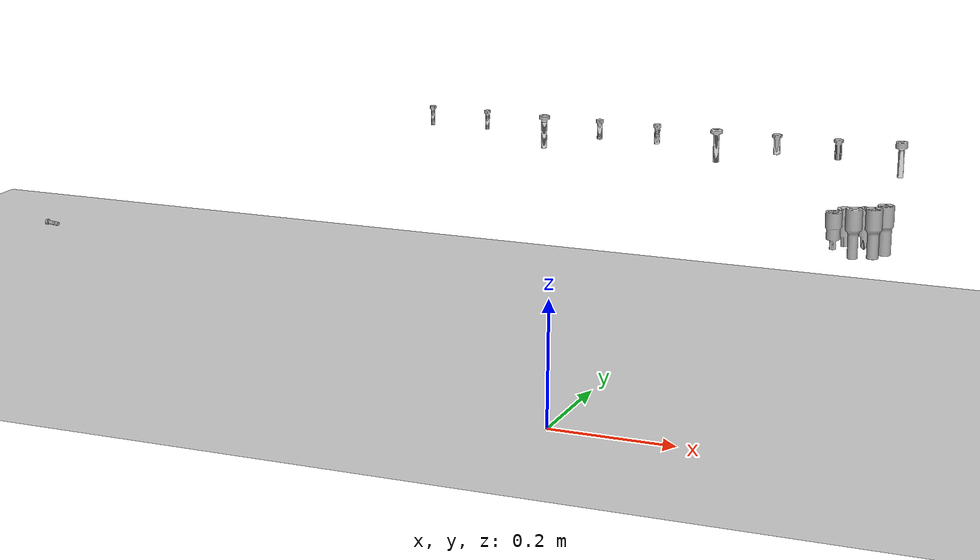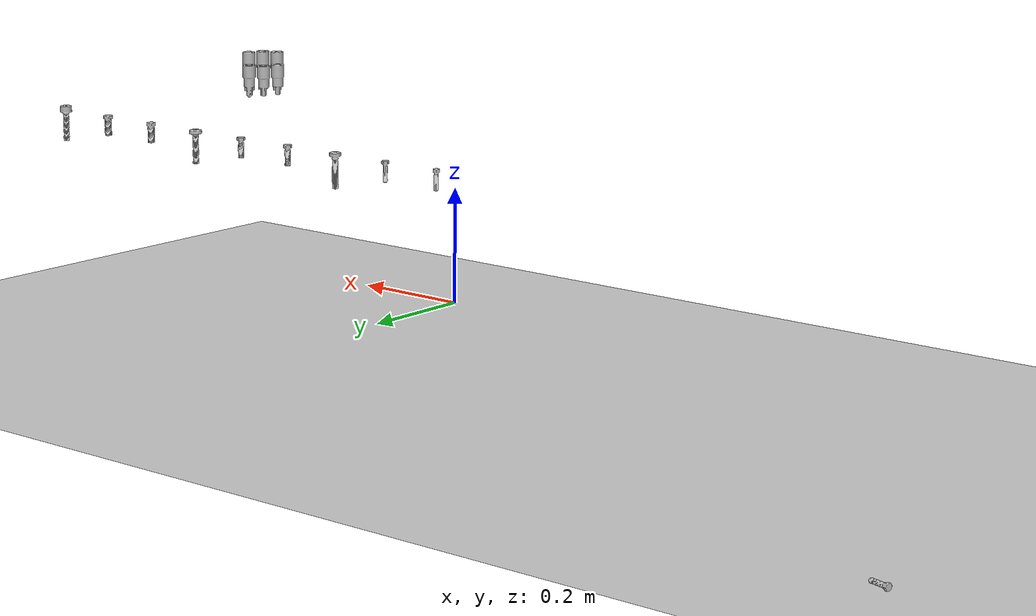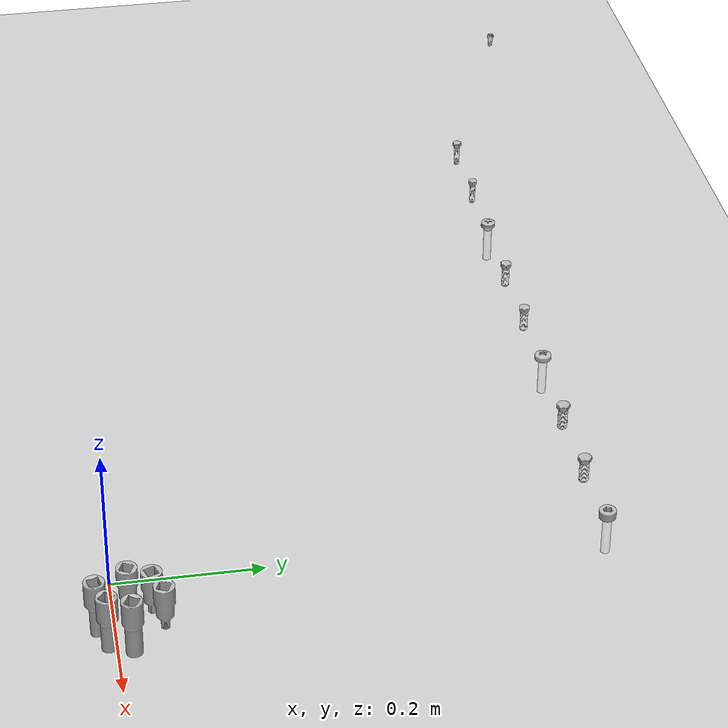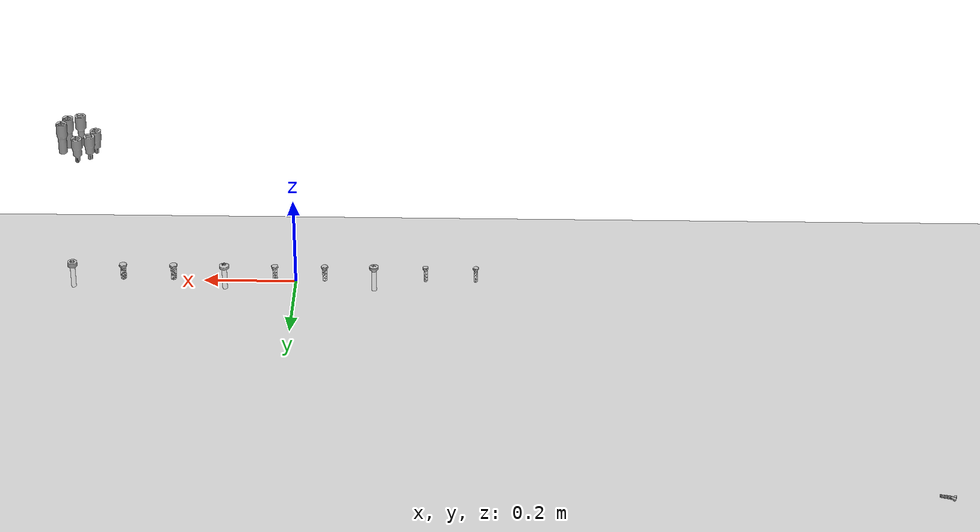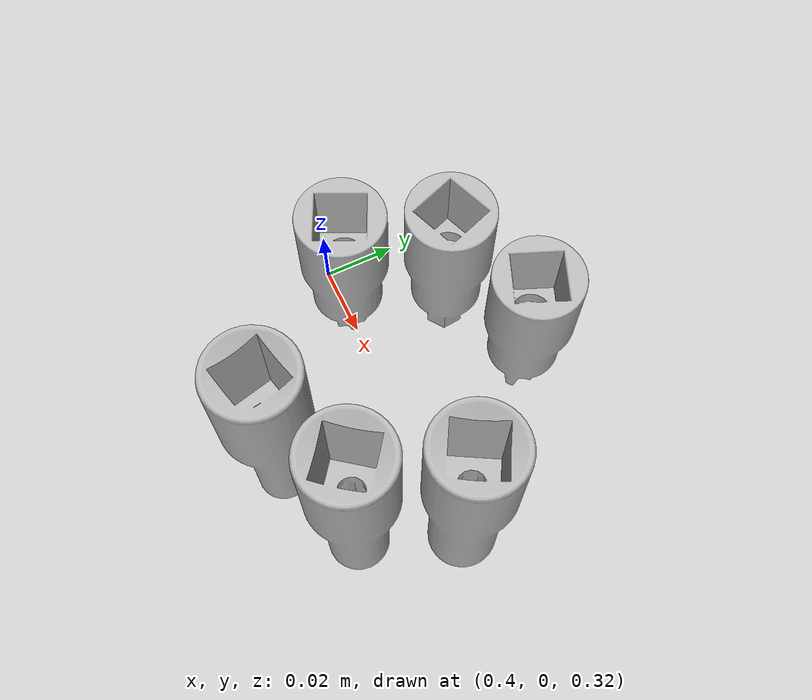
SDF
<sdf version="1.6">
 <world name="default">
  <plugin name="ros_link_attacher_plugin" filename="libgazebo_ros_link_attacher.so"/>
  <light name="sun" type="directional">
   <pose>0 0 10 0 -0 0</pose>
   <diffuse>0.8 0.8 0.8 1</diffuse>
   <specular>0.2 0.2 0.2 1</specular>
   <attenuation>
    <range>1000</range>
    <constant>0.9</constant>
    <linear>0.01</linear>
    <quadratic>0.001</quadratic>
   </attenuation>
   <direction>-0.5 0.1 -0.9</direction>
  </light>
  <model name="ground_plane">
   <static>1</static>
   <link name="link">
    <collision name="collision">
     <geometry><plane><normal>0 0 1</normal><size>100 100</size></plane></geometry>
     <surface>
      <contact><collide_bitmask>65535</collide_bitmask></contact>
      <friction><ode><mu>100</mu><mu2>50</mu2></ode></friction>
     </surface>
    </collision>
    <visual name="visual">
     <cast_shadows>0</cast_shadows>
     <geometry><plane><normal>0 0 1</normal><size>100 100</size></plane></geometry>
     <material>
      <script><uri>file://media/materials/scripts/gazebo.material</uri><name>Gazebo/Grey</name></script>
     </material>
    </visual>
   </link>
  </model>
  <physics name="default_physics" default="0" type="ode">
   <max_step_size>0.001</max_step_size>
   <real_time_factor>1</real_time_factor>
   <real_time_update_rate>1000</real_time_update_rate>
  </physics>
  <gravity>0 0 -9.8</gravity>
  <magnetic_field>6e-06 2.3e-05 -4.2e-05</magnetic_field>
  <atmosphere type="adiabatic"/>
  <scene><ambient>0.4 0.4 0.4 1</ambient><background>0.7 0.7 0.7 1</background><shadows>1</shadows></scene>
  <audio><device>default</device></audio>
  <spherical_coordinates>
   <surface_model>EARTH_WGS84</surface_model>
   <latitude_deg>0</latitude_deg>
   <longitude_deg>0</longitude_deg>
   <elevation>0</elevation>
   <heading_deg>0</heading_deg>
  </spherical_coordinates>
  <model name="hexagon_bolt_sleeve">
   <link name="hexagon_bolt_sleeve_base_link">
    <inertial>
     <mass>0.011735</mass>
     <inertia>
      <ixx>7.5362e-07</ixx>
      <ixy>3.6954e-13</ixy>
      <ixz>1.3504e-13</ixz>
      <iyy>1.4944e-06</iyy>
      <iyz>-1.8927e-13</iyz>
      <izz>1.4944e-06</izz>
     </inertia>
    </inertial>
    <collision name="hexagon_bolt_sleeve_base_link_collision">
     <pose>0.0043 0 0 3.14159 1.57079 3.14159</pose>
     <geometry><cylinder><length>0.054</length><radius>0.011</radius></cylinder></geometry>
    </collision>
    <visual name="hexagon_bolt_sleeve_base_link_visual">
     <geometry>
      <mesh>
       <scale>1 1 1</scale>
       <uri>/home/ur/Desktop/ur10e_sim/src/model/hexagon_sleeve/meshes/hexagon_sleeve_base_link.dae</uri>
      </mesh>
     </geometry>
    </visual>
   </link>
   <pose>0.424263 0.025609 0.3483 0.039683 1.57075 -2.75889</pose>
  </model>
  <model name="star_bolt_sleeve">
   <link name="star_bolt_sleeve_base_link">
    <inertial>
     <mass>0.011338</mass>
     <inertia>
      <ixx>7.4612e-07</ixx>
      <ixy>-3.6954e-13</ixy>
      <ixz>-1.3504e-13</ixz>
      <iyy>1.4267e-06</iyy>
      <iyz>-1.8927e-13</iyz>
      <izz>1.4267e-06</izz>
     </inertia>
    </inertial>
    <collision name="star_bolt_sleeve_base_link_collision">
     <pose>0.005 0 0 3.14159 1.57079 3.14159</pose>
     <geometry><cylinder><length>0.054</length><radius>0.0108</radius></cylinder></geometry>
    </collision>
    <visual name="star_bolt_sleeve_base_link_visual">
     <geometry>
      <mesh>
       <scale>1 1 1</scale>
       <uri>/home/ur/Desktop/ur10e_sim/src/model/star_sleeve/meshes/star_sleeve_base_link.dae</uri>
      </mesh>
     </geometry>
    </visual>
   </link>
   <pose>0.413818 0.000631 0.349 1.22964 1.57078 -0.792783</pose>
  </model>
  <model name="M6_bolt_sleeve">
   <link name="M6_bolt_sleeve_base_link">
    <inertial>
     <pose>-0.00116 -0 0 0 -0 0</pose>
     <mass>0.010651</mass>
     <inertia>
      <ixx>8.1338e-07</ixx>
      <ixy>2.9592e-21</ixy>
      <ixz>-4.8249e-20</ixz>
      <iyy>3.3923e-06</iyy>
      <iyz>1.2184e-38</iyz>
      <izz>3.3923e-06</izz>
     </inertia>
    </inertial>
    <collision name="M6_bolt_sleeve_base_link_collision">
     <pose>0.009 0 0 3.14159 1.57079 3.14159</pose>
     <geometry><cylinder><length>0.07</length><radius>0.011</radius></cylinder></geometry>
    </collision>
    <visual name="M6_bolt_sleeve_base_link_visual">
     <geometry>
      <mesh>
       <scale>1 1 1</scale>
       <uri>/home/ur/Desktop/ur10e_sim/src/model/M6_sleeve/meshes/M6_sleeve_base_link.dae</uri>
      </mesh>
     </geometry>
    </visual>
   </link>
   <pose>0.449552 -0.035438 0.361001 -0.140534 1.57072 1.66182</pose>
  </model>
  <model name="cross_bolt_sleeve">
   <link name="cross_bolt_sleeve_base_link">
    <inertial>
     <mass>0.037112</mass>
     <inertia>
      <ixx>1.2806e-06</ixx>
      <ixy>3.6954e-13</ixy>
      <ixz>1.3504e-13</ixz>
      <iyy>3.7554e-06</iyy>
      <iyz>-1.8927e-13</iyz>
      <izz>3.7554e-06</izz>
     </inertia>
    </inertial>
    <collision name="cross_bolt_sleeve_base_link_collision">
     <pose>-0.0045 0 0 3.14159 1.57079 3.14159</pose>
     <geometry><cylinder><length>0.054</length><radius>0.011</radius></cylinder></geometry>
    </collision>
    <visual name="cross_bolt_sleeve_base_link_visual">
     <geometry>
      <mesh>
       <scale>1 1 1</scale>
       <uri>/home/ur/Desktop/ur10e_sim/src/model/cross_sleeve/meshes/cross_sleeve_base_link.dae</uri>
      </mesh>
     </geometry>
    </visual>
   </link>
   <pose>0.44955 0.036093 0.339499 -3.01897 1.57062 -0.271368</pose>
  </model>
  <model name="M8_bolt_sleeve">
   <link name="M8_bolt_sleeve_base_link">
    <inertial>
     <pose>-0.00074 0 -0 0 -0 0</pose>
     <mass>0.010747</mass>
     <inertia>
      <ixx>8.5579e-07</ixx>
      <ixy>-4.1281e-21</ixy>
      <ixz>6.8952e-20</ixz>
      <iyy>3.5699e-06</iyy>
      <iyz>0</iyz>
      <izz>3.5699e-06</izz>
     </inertia>
    </inertial>
    <collision name="M8_bolt_sleeve_base_link_collision">
     <pose>0.009 0 0 3.14159 1.57079 3.14159</pose>
     <geometry><cylinder><length>0.07</length><radius>0.011</radius></cylinder></geometry>
    </collision>
    <visual name="M8_bolt_sleeve_base_link_visual">
     <geometry>
      <mesh>
       <scale>1 1 1</scale>
       <uri>/home/ur/Desktop/ur10e_sim/src/model/M8_sleeve/meshes/M8_sleeve_base_link.dae</uri>
      </mesh>
     </geometry>
    </visual>
   </link>
   <pose>0.47483 -0.024987 0.361 0.328052 1.57079 -0.334734</pose>
  </model>
  <model name="M10_bolt_sleeve">
   <link name="M10_bolt_sleeve_base_link">
    <inertial>
     <pose>-0.000367 0 -0 0 -0 0</pose>
     <mass>0.010807</mass>
     <inertia>
      <ixx>9.0447e-07</ixx>
      <ixy>-5.476e-21</ixy>
      <ixz>9.2286e-20</ixz>
      <iyy>3.7372e-06</iyy>
      <iyz>2.1176e-22</iyz>
      <izz>3.7372e-06</izz>
     </inertia>
    </inertial>
    <collision name="M10_bolt_sleeve_base_link_collision">
     <pose>0.009 0 0 3.14159 1.57079 3.14159</pose>
     <geometry><cylinder><length>0.07</length><radius>0.011</radius></cylinder></geometry>
    </collision>
    <visual name="M10_bolt_sleeve_base_link_visual">
     <geometry>
      <mesh>
       <scale>1 1 1</scale>
       <uri>/home/ur/Desktop/ur10e_sim/src/model/M10_sleeve/meshes/M10_sleeve_base_link.dae</uri>
      </mesh>
     </geometry>
    </visual>
   </link>
   <pose>0.485229 0.000106 0.361 -2.3009 1.57077 -1.2535</pose>
  </model>
  <model name="M6_bolt_2">
   <link name="M6_bolt_base_link">
    <inertial>
     <mass>0.00132117</mass>
     <inertia>
      <ixx>1.3904e-07</ixx>
      <ixy>-1.11409e-12</ixy>
      <ixz>-1.24928e-12</ixz>
      <iyy>1.39038e-07</iyy>
      <iyz>-5.78343e-11</iyz>
      <izz>1.0587e-08</izz>
     </inertia>
    </inertial>
    <collision name="M6_bolt_base_link_collision">
     <pose>0 0 -0.011 0 -0 0</pose>
     <geometry><box><size>0.011 0.011 0.005</size></box></geometry>
    </collision>
    <visual name="M6_bolt_base_link_visual">
     <geometry>
      <mesh>
       <scale>1 1 1</scale>
       <uri>/home/ur/Desktop/ur10e_sim/src/model/M6_bolt/meshes/M6_bolt_base_link.dae</uri>
      </mesh>
     </geometry>
    </visual>
   </link>
   <pose>-0.304476 0.521937 0.347003 -3.14124 -0.000306 1.30728</pose>
  </model>
  <model name="M8_bolt_1">
   <link name="M8_bolt_base_link">
    <inertial>
     <mass>0.0021494</mass>
     <inertia>
      <ixx>2.2689e-07</ixx>
      <ixy>-3.7275e-12</ixy>
      <ixz>-5.9061e-13</ixz>
      <iyy>2.2689e-07</iyy>
      <iyz>-9.9229e-11</iyz>
      <izz>2.5923e-08</izz>
     </inertia>
    </inertial>
    <collision name="M8_bolt_base_link_collision">
     <pose>0 0 -0.0117 0 -0 0</pose>
     <geometry><box><size>0.013 0.013 0.005</size></box></geometry>
    </collision>
    <visual name="M8_bolt_base_link_visual">
     <geometry>
      <mesh>
       <scale>1 1 1</scale>
       <uri>/home/ur/Desktop/ur10e_sim/src/model/M8_bolt/meshes/M8_bolt_base_link.dae</uri>
      </mesh>
     </geometry>
    </visual>
   </link>
   <pose>-0.104238 0.521465 0.3463 -3.14156 -2.4e-05 1.39579</pose>
  </model>
  <model name="hexagon_bolt">
   <link name="hexagon_bolt_base_link">
    <inertial>
     <mass>0.0048557</mass>
     <inertia>
      <ixx>1.387e-07</ixx>
      <ixy>1.944e-12</ixy>
      <ixz>1.8554e-13</ixz>
      <iyy>6.111e-07</iyy>
      <iyz>-8.0444e-15</iyz>
      <izz>6.111e-07</izz>
     </inertia>
    </inertial>
    <collision name="hexagon_bolt_base_link_collision">
     <pose>-0.0128 0 0 0 -0 0</pose>
     <geometry><box><size>0.005 0.018 0.018</size></box></geometry>
    </collision>
    <visual name="hexagon_bolt_base_link_visual">
     <geometry>
      <mesh>
       <scale>1 1 1</scale>
       <uri>/home/ur/Desktop/ur10e_sim/src/model/hexagon_bolt/meshes/hexagon_bolt_base_link.dae</uri>
      </mesh>
     </geometry>
    </visual>
   </link>
   <pose>0.396721 0.521243 0.3442 -1.66379 1.57079 3.14159</pose>
  </model>
  <model name="M6_bolt_1">
   <link name="M6_bolt_base_link">
    <inertial>
     <mass>0.00132117</mass>
     <inertia>
      <ixx>1.3904e-07</ixx>
      <ixy>-1.11409e-12</ixy>
      <ixz>-1.24928e-12</ixz>
      <iyy>1.39038e-07</iyy>
      <iyz>-5.78343e-11</iyz>
      <izz>1.0587e-08</izz>
     </inertia>
    </inertial>
    <collision name="M6_bolt_base_link_collision">
     <pose>0 0 -0.011 0 -0 0</pose>
     <geometry><box><size>0.011 0.011 0.005</size></box></geometry>
    </collision>
    <visual name="M6_bolt_base_link_visual">
     <geometry>
      <mesh>
       <scale>1 1 1</scale>
       <uri>/home/ur/Desktop/ur10e_sim/src/model/M6_bolt/meshes/M6_bolt_base_link.dae</uri>
      </mesh>
     </geometry>
    </visual>
   </link>
   <pose>-0.403996 0.521618 0.347003 3.14105 -6.4e-05 2.82342</pose>
  </model>
  <model name="M10_bolt_2">
   <link name="M10_bolt_base_link">
    <inertial>
     <mass>0.00318401</mass>
     <inertia>
      <ixx>3.39637e-07</ixx>
      <ixy>-9.1621e-12</ixy>
      <ixz>1.11626e-12</ixz>
      <iyy>3.39635e-07</iyy>
      <iyz>-1.52086e-10</iyz>
      <izz>5.45645e-08</izz>
     </inertia>
    </inertial>
    <collision name="M10_bolt_base_link_collision">
     <pose>0 0 -0.0121 0 -0 0</pose>
     <geometry><box><size>0.015 0.015 0.005</size></box></geometry>
    </collision>
    <visual name="M10_bolt_base_link_visual">
     <geometry>
      <mesh>
       <scale>1 1 1</scale>
       <uri>/home/ur/Desktop/ur10e_sim/src/model/M10_bolt/meshes/M10_bolt_base_link.dae</uri>
      </mesh>
     </geometry>
    </visual>
   </link>
   <pose>0.296043 0.521482 0.3459 -3.14156 -5.5e-05 -0.140299</pose>
  </model>
  <model name="M10_bolt_1">
   <link name="M10_bolt_base_link">
    <inertial>
     <mass>0.00318401</mass>
     <inertia>
      <ixx>3.39637e-07</ixx>
      <ixy>-9.1621e-12</ixy>
      <ixz>1.11626e-12</ixz>
      <iyy>3.39635e-07</iyy>
      <iyz>-1.52086e-10</iyz>
      <izz>5.45645e-08</izz>
     </inertia>
    </inertial>
    <collision name="M10_bolt_base_link_collision">
     <pose>0 0 -0.0121 0 -0 0</pose>
     <geometry><box><size>0.015 0.015 0.005</size></box></geometry>
    </collision>
    <visual name="M10_bolt_base_link_visual">
     <geometry>
      <mesh>
       <scale>1 1 1</scale>
       <uri>/home/ur/Desktop/ur10e_sim/src/model/M10_bolt/meshes/M10_bolt_base_link.dae</uri>
      </mesh>
     </geometry>
    </visual>
   </link>
   <pose>0.195997 0.521413 0.3459 -3.14156 -6e-05 -0.152233</pose>
  </model>
  <model name="M6_bolt_obstacle">
   <link name="M6_bolt_base_link">
    <inertial>
     <mass>0.00132117</mass>
     <inertia>
      <ixx>1.3904e-07</ixx>
      <ixy>-1.11409e-12</ixy>
      <ixz>-1.24928e-12</ixz>
      <iyy>1.39038e-07</iyy>
      <iyz>-5.78343e-11</iyz>
      <izz>1.0587e-08</izz>
     </inertia>
    </inertial>
    <collision name="M6_bolt_base_link_collision">
     <geometry><box><size>0.008 0.008 0.03</size></box></geometry>
    </collision>
    <visual name="M6_bolt_base_link_visual">
     <geometry>
      <mesh>
       <scale>1 1 1</scale>
       <uri>/home/ur/Desktop/ur10e_sim/src/model/M6_bolt/meshes/M6_bolt_base_link.dae</uri>
      </mesh>
     </geometry>
    </visual>
   </link>
   <pose>-1.33989 0.784084 0.003995 -1.57095 1.57074 -1.82759</pose>
  </model>
  <model name="M8_bolt_2">
   <link name="M8_bolt_base_link">
    <inertial>
     <mass>0.0021494</mass>
     <inertia>
      <ixx>2.2689e-07</ixx>
      <ixy>-3.7275e-12</ixy>
      <ixz>-5.9061e-13</ixz>
      <iyy>2.2689e-07</iyy>
      <iyz>-9.9229e-11</iyz>
      <izz>2.5923e-08</izz>
     </inertia>
    </inertial>
    <collision name="M8_bolt_base_link_collision">
     <pose>0 0 -0.0117 0 -0 0</pose>
     <geometry><box><size>0.013 0.013 0.005</size></box></geometry>
    </collision>
    <visual name="M8_bolt_base_link_visual">
     <geometry>
      <mesh>
       <scale>1 1 1</scale>
       <uri>/home/ur/Desktop/ur10e_sim/src/model/M8_bolt/meshes/M8_bolt_base_link.dae</uri>
      </mesh>
     </geometry>
    </visual>
   </link>
   <pose>-0.005348 0.52217 0.346299 -3.14152 -7.5e-05 0.294519</pose>
  </model>
  <model name="cross_bolt">
   <link name="cross_bolt_base_link">
    <inertial>
     <pose>0.011278 -0 -0 0 -0 0</pose>
     <mass>0.0331201</mass>
     <inertia>
      <ixx>6.26316e-07</ixx>
      <ixy>-4.86314e-22</ixy>
      <ixz>1.84045e-22</ixz>
      <iyy>1.06496e-05</iyy>
      <iyz>-1.32753e-22</iyz>
      <izz>1.06496e-05</izz>
     </inertia>
    </inertial>
    <collision name="cross_bolt_base_link_collision">
     <pose>-0.0065 0 0 0 -0 0</pose>
     <geometry><box><size>0.005 0.018 0.018</size></box></geometry>
    </collision>
    <visual name="cross_bolt_base_link_visual">
     <geometry>
      <mesh>
       <scale>1 1 1</scale>
       <uri>/home/ur/Desktop/ur10e_sim/src/model/cross_bolt/meshes/cross_bolt_base_link.dae</uri>
      </mesh>
     </geometry>
    </visual>
   </link>
   <pose>-0.201687 0.519939 0.350499 0.514141 1.57065 -2.89907</pose>
  </model>
  <model name="star_bolt">
   <link name="star_bolt_base_link">
    <inertial>
     <mass>0.00437956</mass>
     <inertia>
      <ixx>1.08966e-07</ixx>
      <ixy>9.66322e-13</ixy>
      <ixz>-4.50467e-13</ixz>
      <iyy>5.82988e-07</iyy>
      <iyz>-1.19725e-12</iyz>
      <izz>5.82975e-07</izz>
     </inertia>
    </inertial>
    <collision name="star_bolt_base_link_collision">
     <pose>-0.016 0 0 0 -0 0</pose>
     <geometry><box><size>0.005 0.018 0.018</size></box></geometry>
    </collision>
    <visual name="star_bolt_base_link_visual">
     <geometry>
      <mesh>
       <scale>1 1 1</scale>
       <uri>/home/ur/Desktop/ur10e_sim/src/model/star_bolt/meshes/star_bolt_base_link.dae</uri>
      </mesh>
     </geometry>
    </visual>
   </link>
   <pose>0.09526 0.521354 0.340998 2.80899 1.57052 -1.66727</pose>
  </model>
  <light name="user_point_light_0" type="point">
   <pose>0.006256 0.026367 1 0 -0 0</pose>
   <diffuse>0.5 0.5 0.5 1</diffuse>
   <specular>0.1 0.1 0.1 1</specular>
   <attenuation>
    <range>20</range>
    <constant>0.5</constant>
    <linear>0.01</linear>
    <quadratic>0.001</quadratic>
   </attenuation>
   <cast_shadows>0</cast_shadows>
   <direction>0 0 -1</direction>
  </light>
 </world>
</sdf>
